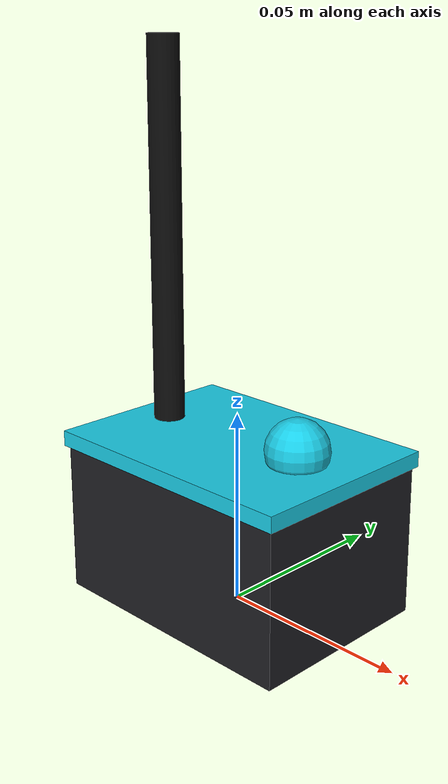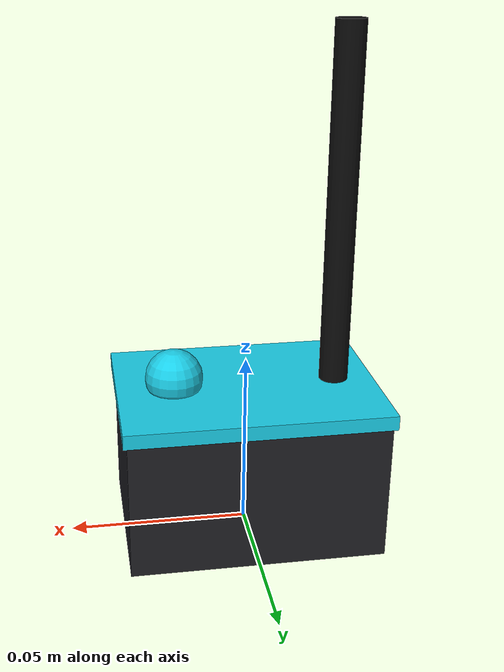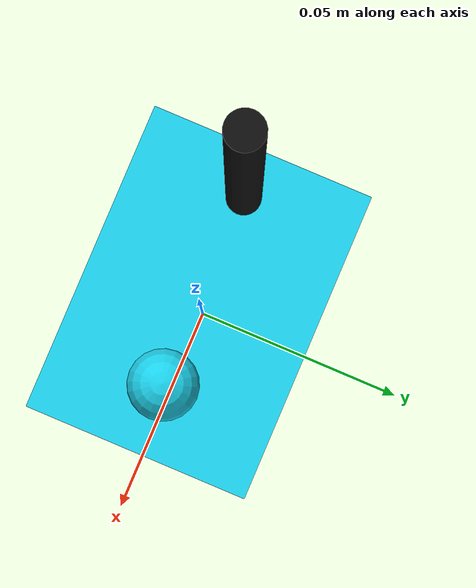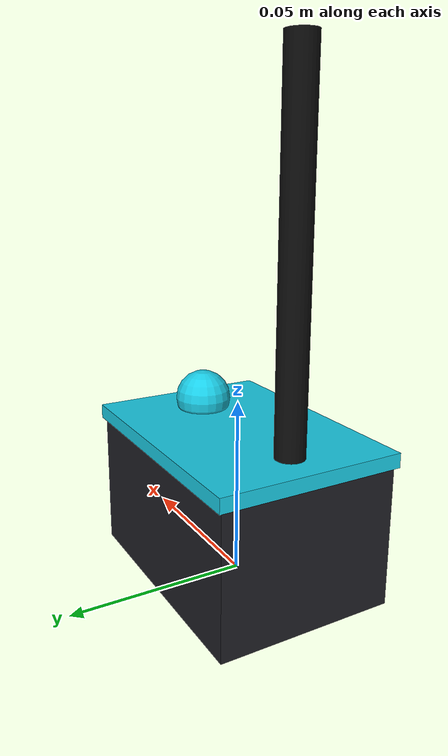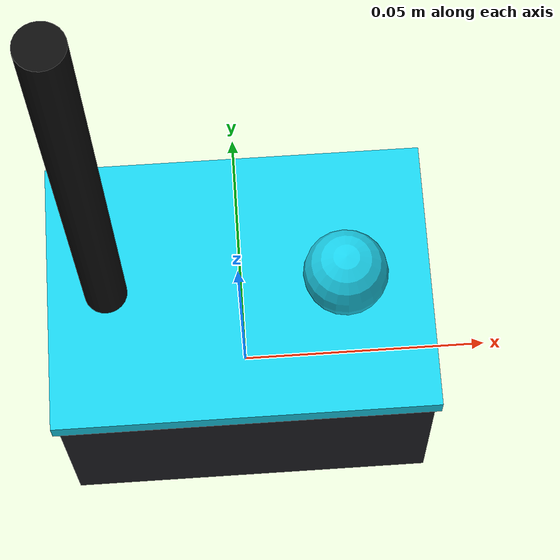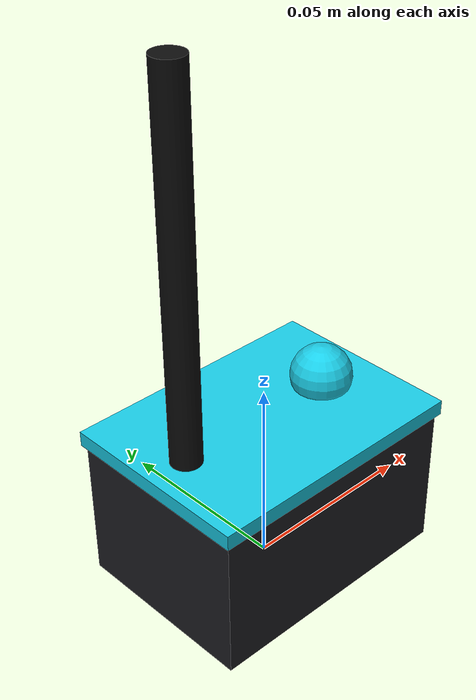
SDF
<?xml version="1.0" ?>
<sdf version="1.9">
  <model name="csi_node">
    <link name="body">
      <pose>0 0 0.02 0 0 0</pose>
      <inertial><mass>0.06</mass><inertia><ixx>1e-5</ixx><ixy>0</ixy><ixz>0</ixz>
        <iyy>1e-5</iyy><iyz>0</iyz><izz>1e-5</izz></inertia></inertial>
      <collision name="c"><geometry><box><size>0.07 0.05 0.04</size></box></geometry>
        <surface><contact><collide_bitmask>0x02</collide_bitmask></contact></surface></collision>
      <visual name="case"><pose>0 0 0 0 0 0</pose><geometry><box><size>0.07 0.05 0.04</size></box></geometry><material><ambient>0.12 0.12 0.14 1</ambient><diffuse>0.12 0.12 0.14 1</diffuse><specular>0.1 0.1 0.1 1</specular></material><cast_shadows>false</cast_shadows></visual>
      <visual name="band"><pose>0 0 0.021 0 0 0</pose><geometry><box><size>0.072 0.052 0.004</size></box></geometry><material><ambient>0.1 0.8 0.9 1</ambient><diffuse>0.1 0.8 0.9 1</diffuse><specular>0.1 0.1 0.1 1</specular><emissive>0.1 0.8 0.9 1</emissive></material><cast_shadows>false</cast_shadows></visual>
      <visual name="led"><pose>0.02 0 0.026 0 0 0</pose><geometry><sphere><radius>0.008</radius></sphere>
        </geometry><material><ambient>0.1 0.8 0.9 1</ambient><diffuse>0.1 0.8 0.9 1</diffuse><specular>0.1 0.1 0.1 1</specular><emissive>0.1 0.8 0.9 1</emissive></material></visual>
      <visual name="antenna"><pose>-0.025 0 0.07 0 0 0</pose><geometry><cylinder><radius>0.004</radius><length>0.1</length></cylinder></geometry><material><ambient>0.05 0.05 0.05 1</ambient><diffuse>0.05 0.05 0.05 1</diffuse><specular>0.1 0.1 0.1 1</specular></material><cast_shadows>false</cast_shadows></visual>
    </link>
  </model>
</sdf>
